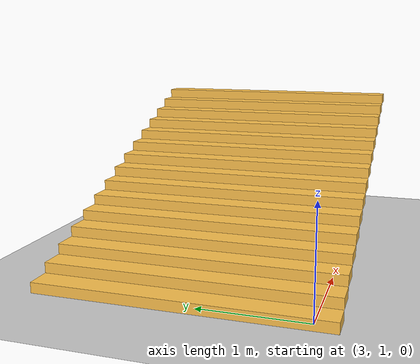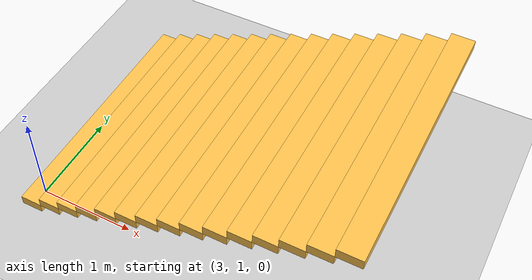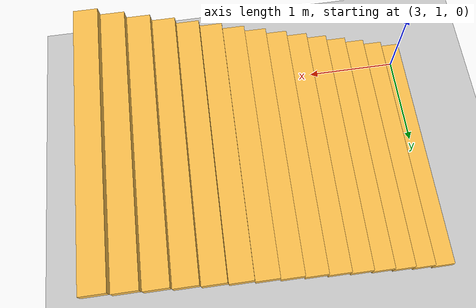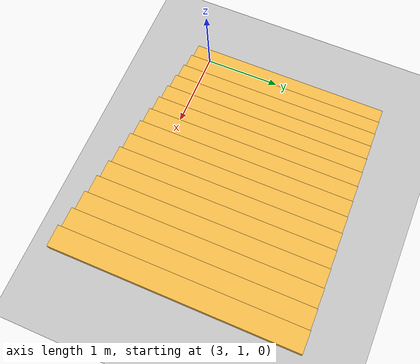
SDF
<?xml version="1.0" ?>
<sdf version="1.5">
  <world name="default">
  <model name='Stairs'>
    <pose frame=''>3 0.5 0 0 -0 0</pose>
    <link name='Stairs_1'>
      <visual name='Stairs_1_Visual_0'>
        <pose frame=''>-0 1.63333 0.05 0 0 0</pose>
        <geometry>
          <box>
            <size>0.233333 2.7 0.1</size>
          </box>
        </geometry>
        <surface>
          <friction>
            <ode>
              <mu>100</mu>
              <mu2>100</mu2>
            </ode>
          </friction>
        </surface>
        <material>
          <script>
            <uri>file://media/materials/scripts/gazebo.material</uri>
            <name>Gazebo/Grey</name>
          </script>
          <ambient>1 0.764706 0.305882 1</ambient>
        </material>
        <meta>
          <layer>0</layer>
        </meta>
      </visual>
      <collision name='Stairs_1_Collision_0'>
        <geometry>
          <box>
            <size>0.233333 2.7 0.1</size>
          </box>
        </geometry>
        <surface>
          <friction>
            <ode>
              <mu>100</mu>
              <mu2>100</mu2>
            </ode>
          </friction>
        </surface>
        <pose frame=''>-0 1.63333 0.05 0 -0 0</pose>
      </collision>
      <visual name='Stairs_1_Visual_1'>
        <pose frame=''>0.233333 1.63333 0.15 0 -0 0</pose>
        <geometry>
          <box>
            <size>0.233333 2.7  0.1</size>
          </box>
        </geometry>
        <surface>
          <friction>
            <ode>
              <mu>100</mu>
              <mu2>100</mu2>
            </ode>
          </friction>
        </surface>
        <material>
          <script>
            <uri>file://media/materials/scripts/gazebo.material</uri>
            <name>Gazebo/Grey</name>
          </script>
          <ambient>1 0.764706 0.305882 1</ambient>
        </material>
        <meta>
          <layer>0</layer>
        </meta>
      </visual>
      <collision name='Stairs_1_Collision_1'>
        <geometry>
          <box>
            <size>0.233333 2.7  0.1</size>
          </box>
        </geometry>
        <surface>
          <friction>
            <ode>
              <mu>100</mu>
              <mu2>100</mu2>
            </ode>
          </friction>
        </surface>
        <pose frame=''>0.233333 1.63333 0.15 0 -0 0</pose>
      </collision>
      <visual name='Stairs_1_Visual_2'>
        <pose frame=''>0.466666 1.63333 0.25 0 -0 0</pose>
        <geometry>
          <box>
            <size>0.233333 2.7  0.1</size>
          </box>
        </geometry>
        <surface>
          <friction>
            <ode>
              <mu>100</mu>
              <mu2>100</mu2>
            </ode>
          </friction>
        </surface>
        <material>
          <script>
            <uri>file://media/materials/scripts/gazebo.material</uri>
            <name>Gazebo/Grey</name>
          </script>
          <ambient>1 0.764706 0.305882 1</ambient>
        </material>
        <meta>
          <layer>0</layer>
        </meta>
      </visual>
      <collision name='Stairs_1_Collision_2'>
        <geometry>
          <box>
            <size>0.233333 2.7 0.1</size>
          </box>
        </geometry>
        <surface>
          <friction>
            <ode>
              <mu>100</mu>
              <mu2>100</mu2>
            </ode>
          </friction>
        </surface>
        <pose frame=''>0.466666 1.63333 0.25 0 -0 0</pose>
      </collision>
      <visual name='Stairs_1_Visual_3'>
        <pose frame=''>0.699999 1.63333 0.35 0 -0 0</pose>
        <geometry>
          <box>
            <size>0.233333 2.7  0.1</size>
          </box>
        </geometry>
        <surface>
          <friction>
            <ode>
              <mu>100</mu>
              <mu2>100</mu2>
            </ode>
          </friction>
        </surface>
        <material>
          <script>
            <uri>file://media/materials/scripts/gazebo.material</uri>
            <name>Gazebo/Grey</name>
          </script>
          <ambient>1 0.764706 0.305882 1</ambient>
        </material>
        <meta>
          <layer>0</layer>
        </meta>
      </visual>
      <collision name='Stairs_1_Collision_3'>
        <geometry>
          <box>
            <size>0.233333 2.7  0.1</size>
          </box>
        </geometry>
        <surface>
          <friction>
            <ode>
              <mu>100</mu>
              <mu2>100</mu2>
            </ode>
          </friction>
        </surface>
        <pose frame=''>0.699999 1.63333 0.35 0 -0 0</pose>
      </collision>
      <visual name='Stairs_1_Visual_4'>
        <pose frame=''>0.933332 1.63333 0.45 0 -0 0</pose>
        <geometry>
          <box>
            <size>0.233333 2.7 0.1</size>
          </box>
        </geometry>
        <surface>
          <friction>
            <ode>
              <mu>100</mu>
              <mu2>100</mu2>
            </ode>
          </friction>
        </surface>
        <material>
          <script>
            <uri>file://media/materials/scripts/gazebo.material</uri>
            <name>Gazebo/Grey</name>
          </script>
          <ambient>1 0.764706 0.305882 1</ambient>
        </material>
        <meta>
          <layer>0</layer>
        </meta>
      </visual>
      <collision name='Stairs_1_Collision_4'>
        <geometry>
          <box>
            <size>0.233333 2.7 0.1</size>
          </box>
        </geometry>
        <surface>
          <friction>
            <ode>
              <mu>100</mu>
              <mu2>100</mu2>
            </ode>
          </friction>
        </surface>
        <pose frame=''>0.933332 1.63333 0.45 0 -0 0</pose>
      </collision>
      <visual name='Stairs_1_Visual_5'>
        <pose frame=''>1.166662 1.63333 0.55 0 -0 0</pose>
        <geometry>
          <box>
            <size>0.233333 2.7 0.1</size>
          </box>
        </geometry>
        <surface>
          <friction>
            <ode>
              <mu>100</mu>
              <mu2>100</mu2>
            </ode>
          </friction>
        </surface>
        <material>
          <script>
            <uri>file://media/materials/scripts/gazebo.material</uri>
            <name>Gazebo/Grey</name>
          </script>
          <ambient>1 0.764706 0.305882 1</ambient>
        </material>
        <meta>
          <layer>0</layer>
        </meta>
      </visual>
      <collision name='Stairs_1_Collision_5'>
        <geometry>
          <box>
            <size>0.233333 2.7 0.1</size>
          </box>
        </geometry>
        <surface>
          <friction>
            <ode>
              <mu>100</mu>
              <mu2>100</mu2>
            </ode>
          </friction>
        </surface>
        <pose frame=''>1.166662 1.63333 0.55 0 -0 0</pose>
      </collision>
      <visual name='Stairs_1_Visual_6'>
        <pose frame=''>1.399995 1.63333 0.65 0 -0 0</pose>
        <geometry>
          <box>
            <size>0.233333 2.7 0.1</size>
          </box>
        </geometry>
        <surface>
          <friction>
            <ode>
              <mu>100</mu>
              <mu2>100</mu2>
            </ode>
          </friction>
        </surface>
        <material>
          <script>
            <uri>file://media/materials/scripts/gazebo.material</uri>
            <name>Gazebo/Grey</name>
          </script>
          <ambient>1 0.764706 0.305882 1</ambient>
        </material>
        <meta>
          <layer>0</layer>
        </meta>
      </visual>
      <collision name='Stairs_1_Collision_6'>
        <geometry>
          <box>
            <size>0.233333 2.7 0.1</size>
          </box>
        </geometry>
        <surface>
          <friction>
            <ode>
              <mu>100</mu>
              <mu2>100</mu2>
            </ode>
          </friction>
        </surface>
        <pose frame=''>1.399995 1.63333 0.65 0 -0 0</pose>
      </collision>
      <visual name='Stairs_1_Visual_7'>
        <pose frame=''>1.633328 1.63333 0.75 0 -0 0</pose>
        <geometry>
          <box>
            <size> 0.233333 2.7 0.1</size>
          </box>
        </geometry>
        <surface>
          <friction>
            <ode>
              <mu>100</mu>
              <mu2>100</mu2>
            </ode>
          </friction>
        </surface>
        <material>
          <script>
            <uri>file://media/materials/scripts/gazebo.material</uri>
            <name>Gazebo/Grey</name>
          </script>
          <ambient>1 0.764706 0.305882 1</ambient>
        </material>
        <meta>
          <layer>0</layer>
        </meta>
      </visual>
      <collision name='Stairs_1_Collision_7'>
        <geometry>
          <box>
            <size>0.233333 2.7 0.1</size>
          </box>
        </geometry>
        <surface>
          <friction>
            <ode>
              <mu>100</mu>
              <mu2>100</mu2>
            </ode>
          </friction>
        </surface>
        <pose frame=''>1.633328 1.63333 0.75 0 -0 0</pose>
      </collision>
      <visual name='Stairs_1_Visual_8'>
        <pose frame=''>1.866661 1.63333 0.85 0 -0 0</pose>
        <geometry>
          <box>
            <size>0.233333 2.7 0.1</size>
          </box>
        </geometry>
        <surface>
          <friction>
            <ode>
              <mu>100</mu>
              <mu2>100</mu2>
            </ode>
          </friction>
        </surface>
        <material>
          <script>
            <uri>file://media/materials/scripts/gazebo.material</uri>
            <name>Gazebo/Grey</name>
          </script>
          <ambient>1 0.764706 0.305882 1</ambient>
        </material>
        <meta>
          <layer>0</layer>
        </meta>
      </visual>
      <collision name='Stairs_1_Collision_8'>
        <geometry>
          <box>
            <size>0.233333 2.7 0.1</size>
          </box>
        </geometry>
        <surface>
          <friction>
            <ode>
              <mu>100</mu>
              <mu2>100</mu2>
            </ode>
          </friction>
        </surface>
        <pose frame=''>1.866661 1.63333 0.85 0 -0 0</pose>
      </collision>
      <visual name='Stairs_1_Visual_9'>
        <pose frame=''>2.099994 1.63333 0.95 0 -0 0</pose>
        <geometry>
          <box>
            <size>0.233333 2.7 0.1</size>
          </box>
        </geometry>
        <surface>
          <friction>
            <ode>
              <mu>100</mu>
              <mu2>100</mu2>
            </ode>
          </friction>
        </surface>
        <material>
          <script>
            <uri>file://media/materials/scripts/gazebo.material</uri>
            <name>Gazebo/Grey</name>
          </script>
          <ambient>1 0.764706 0.305882 1</ambient>
        </material>
        <meta>
          <layer>0</layer>
        </meta>
      </visual>
      <collision name='Stairs_1_Collision_9'>
        <geometry>
          <box>
            <size>0.233333 2.7 0.1</size>
          </box>
        </geometry>
        <surface>
          <friction>
            <ode>
              <mu>100</mu>
              <mu2>100</mu2>
            </ode>
          </friction>
        </surface>
        <pose frame=''>2.099994 1.63333 0.95 0 -0 0</pose>
      </collision>
      <visual name='Stairs_1_Visual_10'>
        <pose frame=''>2.333327 1.63333 1.05 0 -0 0</pose>
        <geometry>
          <box>
            <size>0.233333 2.7 0.1</size>
          </box>
        </geometry>
        <surface>
          <friction>
            <ode>
              <mu>100</mu>
              <mu2>100</mu2>
            </ode>
          </friction>
        </surface>
        <material>
          <script>
            <uri>file://media/materials/scripts/gazebo.material</uri>
            <name>Gazebo/Grey</name>
          </script>
          <ambient>1 0.764706 0.305882 1</ambient>
        </material>
        <meta>
          <layer>0</layer>
        </meta>
      </visual>
      <collision name='Stairs_1_Collision_10'>
        <geometry>
          <box>
            <size>0.233333 2.7 0.1</size>
          </box>
        </geometry>
        <surface>
          <friction>
            <ode>
              <mu>100</mu>
              <mu2>100</mu2>
            </ode>
          </friction>
        </surface>
        <pose frame=''>2.333327 1.63333 1.05 0 -0 0</pose>
      </collision>
      <visual name='Stairs_1_Visual_11'>
        <pose frame=''>2.56666 1.63333 1.15 0 -0 0</pose>
        <geometry>
          <box>
            <size>0.233333 2.7 0.1</size>
          </box>
        </geometry>
        <surface>
          <friction>
            <ode>
              <mu>100</mu>
              <mu2>100</mu2>
            </ode>
          </friction>
        </surface>
        <material>
          <script>
            <uri>file://media/materials/scripts/gazebo.material</uri>
            <name>Gazebo/Grey</name>
          </script>
          <ambient>1 0.764706 0.305882 1</ambient>
        </material>
        <meta>
          <layer>0</layer>
        </meta>
      </visual>
      <collision name='Stairs_1_Collision_11'>
        <geometry>
          <box>
            <size>0.233333 2.7  0.1</size>
          </box>
        </geometry>
        <surface>
          <friction>
            <ode>
              <mu>100</mu>
              <mu2>100</mu2>
            </ode>
          </friction>
        </surface>
        <pose frame=''>2.56666 1.63333 1.15 0 -0 0</pose>
      </collision>
      <visual name='Stairs_1_Visual_12'>
        <pose frame=''>2.799993 1.63333 1.25 0 -0 0</pose>
        <geometry>
          <box>
            <size>0.233333 2.7 0.1</size>
          </box>
        </geometry>
        <surface>
          <friction>
            <ode>
              <mu>100</mu>
              <mu2>100</mu2>
            </ode>
          </friction>
        </surface>
        <material>
          <script>
            <uri>file://media/materials/scripts/gazebo.material</uri>
            <name>Gazebo/Grey</name>
          </script>
          <ambient>1 0.764706 0.305882 1</ambient>
        </material>
        <meta>
          <layer>0</layer>
        </meta>
      </visual>
      <collision name='Stairs_1_Collision_12'>
        <geometry>
          <box>
            <size>0.233333 2.7 0.1</size>
          </box>
        </geometry>
        <surface>
          <friction>
            <ode>
              <mu>100</mu>
              <mu2>100</mu2>
            </ode>
          </friction>
        </surface>
        <pose frame=''>2.799993 1.63333 1.25 0 -0 0</pose>
      </collision>
      <visual name='Stairs_1_Visual_13'>
        <pose frame=''>3.033326 1.63333 1.35 0 -0 0</pose>
        <geometry>
          <box>
            <size>0.233333 2.7 0.1</size>
          </box>
        </geometry>
        <surface>
          <friction>
            <ode>
              <mu>100</mu>
              <mu2>100</mu2>
            </ode>
          </friction>
        </surface>
        <material>
          <script>
            <uri>file://media/materials/scripts/gazebo.material</uri>
            <name>Gazebo/Grey</name>
          </script>
          <ambient>1 0.764706 0.305882 1</ambient>
        </material>
        <meta>
          <layer>0</layer>
        </meta>
      </visual>
      <collision name='Stairs_1_Collision_13'>
        <geometry>
          <box>
            <size>0.233333 2.7 0.1</size>
          </box>
        </geometry>
        <surface>
          <friction>
            <ode>
              <mu>100</mu>
              <mu2>100</mu2>
            </ode>
          </friction>
        </surface>
        <pose frame=''>3.033326 1.63333 1.35 0 -0 0</pose>
      </collision>
      <visual name='Stairs_1_Visual_14'>
        <pose frame=''>3.266659 1.63333 1.45 0 -0 0</pose>
        <geometry>
          <box>
            <size>0.233333 2.7 0.1</size>
          </box>
        </geometry>
        <surface>
          <friction>
            <ode>
              <mu>100</mu>
              <mu2>100</mu2>
            </ode>
          </friction>
        </surface>
        <material>
          <script>
            <uri>file://media/materials/scripts/gazebo.material</uri>
            <name>Gazebo/Grey</name>
          </script>
          <ambient>1 0.764706 0.305882 1</ambient>
        </material>
        <meta>
          <layer>0</layer>
        </meta>
      </visual>
      <collision name='Stairs_1_Collision_14'>
        <geometry>
          <box>
            <size>2.7 0.233333 0.1</size>
          </box>
        </geometry>
        <surface>
          <friction>
            <ode>
              <mu>100</mu>
              <mu2>100</mu2>
            </ode>
          </friction>
        </surface>
        <pose frame=''>3.266659 1.63333 1.45 0 -0 0</pose>
      </collision>
    </link>
    <static>1</static>
  </model>

    <!-- A global light source -->
    <include>
      <uri>model://sun</uri>
    </include>
    <!-- A ground plane -->
    <include>
      <uri>model://ground_plane</uri>
    </include>
  </world>
</sdf>
